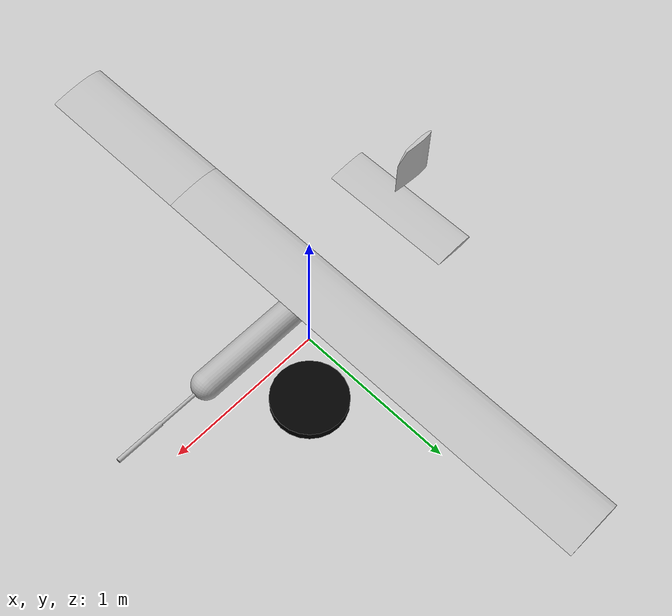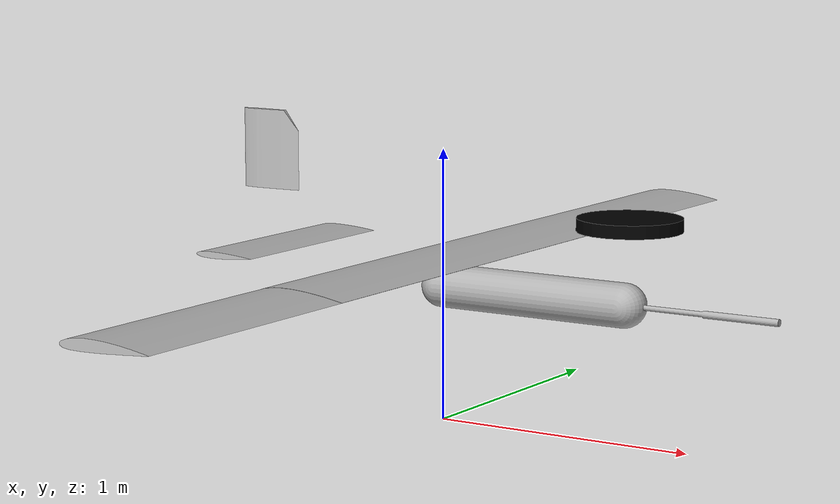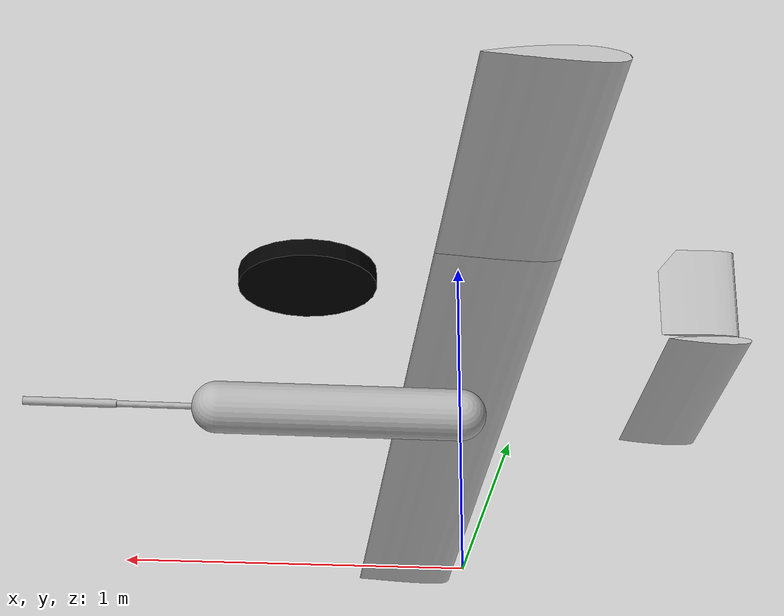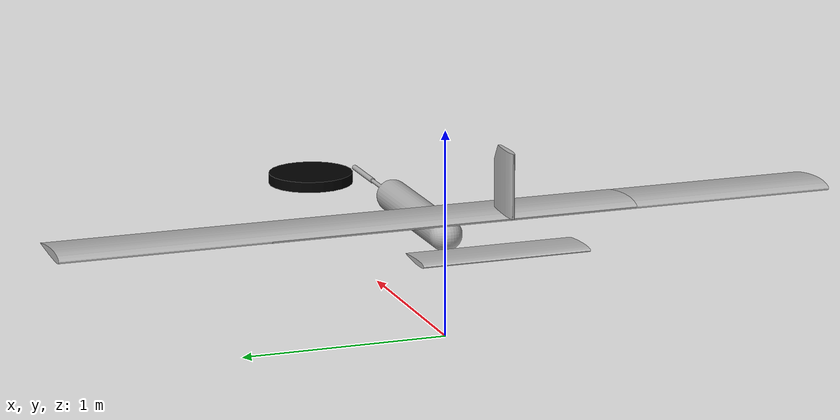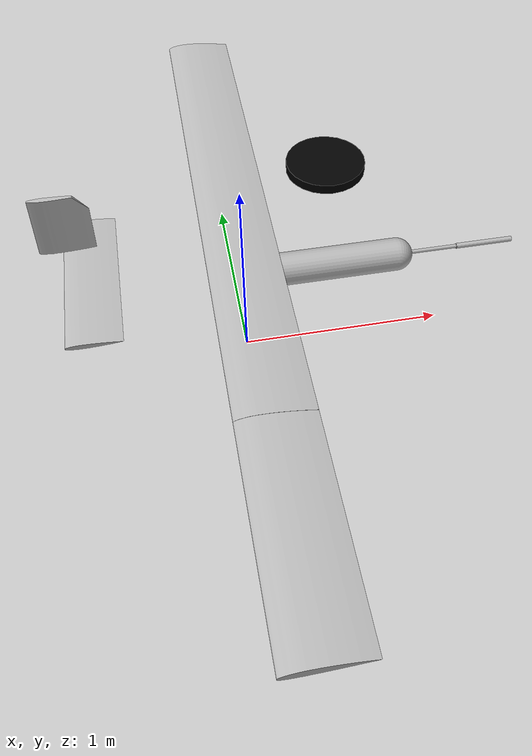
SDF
<?xml version="1.0" ?>
<sdf version="1.9">
  <model name="zefiro_vtol">
    <pose>0 0 0.5 0 0 0</pose>

    <link name="fuselage">
      <inertial>
        <mass>12.5</mass>
        <inertia>
          <ixx>1.25</ixx><ixy>0</ixy><ixz>0</ixz>
          <iyy>1.40</iyy><iyz>0</iyz><izz>1.60</izz>
        </inertia>
      </inertial>
      <collision name="fuselage_collision">
        <geometry><box><size>1.5 0.3 0.3</size></box></geometry>
      </collision>
      <visual name="fuselage_visual">
      	<pose>0 0 0 0 1.57 0</pose>
        <geometry>
          <mesh>
            <uri>model://zefiro_vtol/meshes/fusoliera5.obj</uri>
            <scale>1 1 1</scale>
          </mesh>
        </geometry>
        <material><ambient>0.7 0.7 0.7 1</ambient><diffuse>0.7 0.7 0.7 1</diffuse></material>
      </visual>
      <sensor name="imu_sensor" type="imu">
        <always_on>1</always_on>
        <update_rate>100</update_rate>
        <topic>zefiro/imu</topic>
      </sensor>
      <sensor name="navsat_sensor" type="navsat">
        <always_on>1</always_on>
        <update_rate>10</update_rate>
        <topic>zefiro/gps</topic>
      </sensor>
    </link>

    <link name="wing_left">
      <pose>0 0.5 0.1 0 0 0</pose>
      <inertial>
        <mass>1.0</mass>
        <inertia>
          <ixx>0.1</ixx><ixy>0</ixy><ixz>0</ixz>
          <iyy>0.01</iyy><iyz>0</iyz><izz>0.1</izz>
        </inertia>
      </inertial>
      <visual name="visual">
      	<pose>0 0 0 1.57 0 0</pose>
        <geometry>
          <mesh>
            <uri>model://zefiro_vtol/meshes/ala2412X.obj</uri>
            <scale>1 1 1</scale>
          </mesh>
        </geometry>
      </visual>
      <collision name="collision">
        <geometry><box><size>0.4 1.5 0.05</size></box></geometry>
      </collision>
    </link>

    <link name="wing_right">
      <pose>0 -0.5 0.1 0 0 0</pose>
      <inertial>
        <mass>1.0</mass>
        <inertia>
          <ixx>0.1</ixx><ixy>0</ixy><ixz>0</ixz>
          <iyy>0.01</iyy><iyz>0</iyz><izz>0.1</izz>
        </inertia>
      </inertial>
      <visual name="visual">
      	<pose>0 0 0 1.57 0 0</pose>
        <geometry>
          <mesh>
            <uri>model://zefiro_vtol/meshes/ala2412X.obj</uri>
            <scale>1 1 1</scale>
          </mesh>
        </geometry>
      </visual>
      <collision name="collision">
        <geometry><box><size>0.4 1.5 0.05</size></box></geometry>
      </collision>
    </link>

    <link name="h_tail">
      <pose>-0.7 0 0.1 0 0 0</pose>
      <inertial>
        <mass>0.5</mass>
        <inertia>
            <ixx>0.05</ixx><ixy>0</ixy><ixz>0</ixz>
            <iyy>0.01</iyy><iyz>0</iyz><izz>0.05</izz>
        </inertia>
      </inertial>
      <visual name="h_tail_visual">
      	<pose>0 0 0 1.57 0 0</pose>
        <geometry>
          <mesh>
            <uri>model://zefiro_vtol/meshes/impennaggio_orizzX.obj</uri>
            <scale>1 1 1</scale>
          </mesh>
        </geometry>
      </visual>
      <collision name="h_tail_collision">
         <geometry><box><size>0.3 0.8 0.05</size></box></geometry>
      </collision>
    </link>

    <link name="v_tail">
      <pose>-0.7 0 0.3 0 0 0</pose>
      <inertial>
        <mass>0.2</mass>
        <inertia>
            <ixx>0.02</ixx><ixy>0</ixy><ixz>0</ixz>
            <iyy>0.02</iyy><iyz>0</iyz><izz>0.005</izz>
        </inertia>
      </inertial>
      <visual name="v_tail_visual">
      	<pose>0 0 0 1.57 0 0</pose>
        <geometry>
          <mesh>
             <uri>model://zefiro_vtol/meshes/impennaggio_vertX.obj</uri>
             <scale>1 1 1</scale>
          </mesh>
        </geometry>
      </visual>
      <collision name="v_tail_collision">
        <geometry><box><size>0.4 0.05 0.4</size></box></geometry>
      </collision>
    </link>

    <joint name="wing_left_joint" type="fixed">
      <parent>fuselage</parent>
      <child>wing_left</child>
    </joint>
    <joint name="wing_right_joint" type="fixed">
      <parent>fuselage</parent>
      <child>wing_right</child>
    </joint>
    <joint name="h_tail_joint" type="fixed">
      <parent>fuselage</parent>
      <child>h_tail</child>
    </joint>
    <joint name="v_tail_joint" type="fixed">
      <parent>h_tail</parent>
      <child>v_tail</child>
    </joint>

    <link name="vtol_rotor_front_left">
      <pose>0.5 0.5 0.2 0 0 0</pose>
      <inertial>
        <mass>0.1</mass>
        <inertia>
          <ixx>0.001</ixx><ixy>0</ixy><ixz>0</ixz>
          <iyy>0.001</iyy><iyz>0</iyz><izz>0.001</izz>
        </inertia>
      </inertial>
      <visual name="visual">
        <geometry><cylinder><radius>0.2</radius><length>0.05</length></cylinder></geometry>
        <material><ambient>0 0 0 1</ambient><diffuse>0 0 0 1</diffuse></material>
      </visual>
      <collision name="collision">
        <geometry><cylinder><radius>0.2</radius><length>0.05</length></cylinder></geometry>
      </collision>
    </link>

    <joint name="vtol_rotor_fl_joint" type="revolute">
      <parent>wing_left</parent>
      <child>vtol_rotor_front_left</child>
      <axis>
        <xyz>0 0 1</xyz>
        <limit><lower>-1e16</lower><upper>1e16</upper></limit>
      </axis>
    </joint>

    <plugin filename="gz-sim-multicopter-motor-model-system" name="gz::sim::systems::MulticopterMotorModel">
      <jointName>vtol_rotor_fl_joint</jointName>
      <linkName>vtol_rotor_front_left</linkName>
      <turningDirection>cw</turningDirection>
      <timeConstantUp>0.0125</timeConstantUp>
      <timeConstantDown>0.025</timeConstantDown>
      <maxRotVelocity>1000</maxRotVelocity>
      <motorConstant>8.54858e-06</motorConstant>
      <momentConstant>0.06</momentConstant>
      <commandSubTopic>command/motor_speed</commandSubTopic>
      <motorNumber>0</motorNumber>
    </plugin>
  </model>
</sdf>
